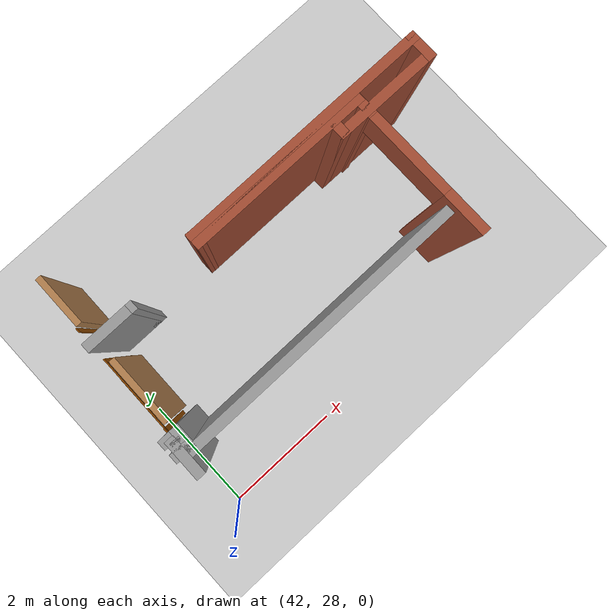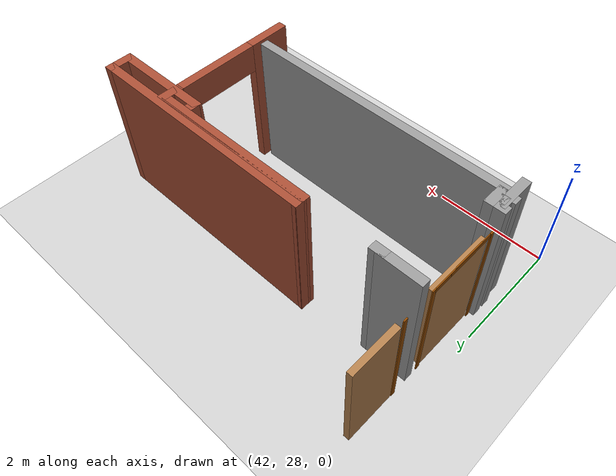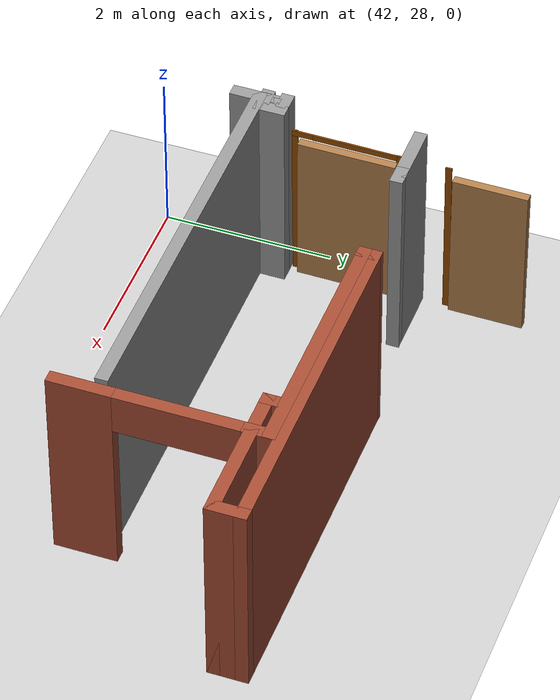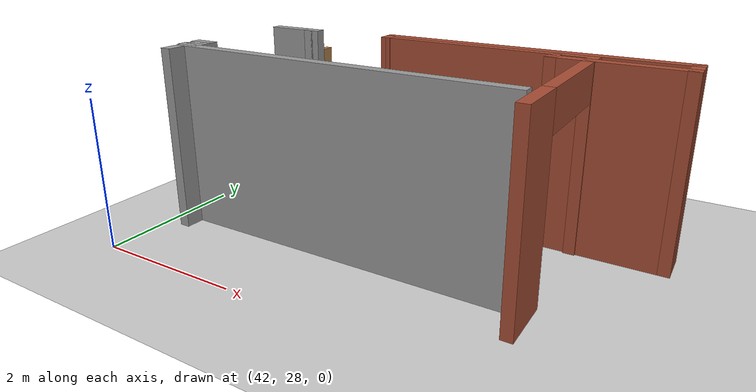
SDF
<sdf version="1.6">
 <world name="default">
  <model name="ground_plane">
   <static>1</static>
   <link name="link">
    <collision name="collision">
     <geometry><plane><normal>0 0 1</normal><size>100 100</size></plane></geometry>
     <surface><friction><ode><mu>100</mu><mu2>50</mu2></ode></friction></surface>
    </collision>
    <visual name="visual">
     <cast_shadows>0</cast_shadows>
     <geometry><plane><normal>0 0 1</normal><size>100 100</size></plane></geometry>
     <material>
      <script><uri>file://media/materials/scripts/gazebo.material</uri><name>Gazebo/Grey</name></script>
     </material>
    </visual>
   </link>
  </model>
  <model name="CVSSP">
   <pose>23.8714 24.094 0 0 -0 0</pose>
   <link name="Wall_137">
    <collision name="Wall_137_Collision">
     <geometry><box><size>0.344547 0.15 2.5</size></box></geometry>
     <pose>0 0 1.25 0 -0 0</pose>
    </collision>
    <visual name="Wall_137_Visual">
     <pose>0 0 1.25 0 -0 0</pose>
     <geometry><box><size>0.344547 0.15 2.5</size></box></geometry>
     <material>
      <script><uri>file://media/materials/scripts/gazebo.material</uri><name>Gazebo/Grey</name></script>
      <ambient>1 1 1 1</ambient>
     </material>
    </visual>
    <pose>18.4776 5.4664 0 0 -0 0</pose>
   </link>
   <link name="Wall_138">
    <collision name="Wall_138_Collision">
     <geometry><box><size>0.37481 0.15 2.5</size></box></geometry>
     <pose>0 0 1.25 0 -0 0</pose>
    </collision>
    <visual name="Wall_138_Visual">
     <pose>0 0 1.25 0 -0 0</pose>
     <geometry><box><size>0.37481 0.15 2.5</size></box></geometry>
     <material>
      <script><uri>file://media/materials/scripts/gazebo.material</uri><name>Gazebo/Grey</name></script>
      <ambient>1 1 1 1</ambient>
     </material>
    </visual>
    <pose>18.5749 5.354 0 0 0 -1.5708</pose>
   </link>
   <link name="Wall_139">
    <collision name="Wall_139_Collision">
     <geometry><box><size>0.344547 0.15 2.5</size></box></geometry>
     <pose>0 0 1.25 0 -0 0</pose>
    </collision>
    <visual name="Wall_139_Visual">
     <pose>0 0 1.25 0 -0 0</pose>
     <geometry><box><size>0.344547 0.15 2.5</size></box></geometry>
     <material>
      <script><uri>file://media/materials/scripts/gazebo.material</uri><name>Gazebo/Grey</name></script>
      <ambient>1 1 1 1</ambient>
     </material>
    </visual>
    <pose>18.4776 5.24159 0 0 -0 3.14159</pose>
   </link>
   <link name="Wall_142">
    <collision name="Wall_142_Collision">
     <geometry><box><size>4.79472 0.15 2.5</size></box></geometry>
     <pose>0 0 1.25 0 -0 0</pose>
    </collision>
    <visual name="Wall_142_Visual">
     <pose>0 0 1.25 0 -0 0</pose>
     <geometry><box><size>4.79472 0.15 2.5</size></box></geometry>
     <material>
      <script><uri>file://media/materials/scripts/gazebo.material</uri><name>Gazebo/Grey</name></script>
      <ambient>1 1 1 1</ambient>
     </material>
    </visual>
    <pose>20.7622 5.16977 0 0 0 -3.14127</pose>
   </link>
   <link name="Wall_200">
    <pose>23.2929 5.89364 0 0 -0 1.57095</pose>
    <visual name="Wall_200_Visual_0">
     <pose>-0.901323 0 1.25 0 -0 0</pose>
     <geometry><box><size>0.73684 0.15 2.5</size></box></geometry>
     <material>
      <script><uri>file://media/materials/scripts/gazebo.material</uri><name>Gazebo/Bricks</name></script>
      <ambient>0.588235 0.588235 0.588235 1</ambient>
     </material>
    </visual>
    <collision name="Wall_200_Collision_0">
     <geometry><box><size>0.73684 0.15 2.5</size></box></geometry>
     <pose>-0.901323 0 1.25 0 -0 0</pose>
    </collision>
    <visual name="Wall_200_Visual_1">
     <pose>1.08077 0 1.25 0 -0 0</pose>
     <geometry><box><size>0.377951 0.15 2.5</size></box></geometry>
     <material>
      <script><uri>file://media/materials/scripts/gazebo.material</uri><name>Gazebo/Bricks</name></script>
      <ambient>0.588235 0.588235 0.588235 1</ambient>
     </material>
    </visual>
    <collision name="Wall_200_Collision_1">
     <geometry><box><size>0.377951 0.15 2.5</size></box></geometry>
     <pose>1.08077 0 1.25 0 -0 0</pose>
    </collision>
    <visual name="Wall_200_Visual_2">
     <pose>0.179445 0 2.25 0 -0 0</pose>
     <geometry><box><size>1.4247 0.15 0.5</size></box></geometry>
     <material>
      <script><uri>file://media/materials/scripts/gazebo.material</uri><name>Gazebo/Bricks</name></script>
      <ambient>0.588235 0.588235 0.588235 1</ambient>
     </material>
    </visual>
    <collision name="Wall_200_Collision_2">
     <geometry><box><size>1.4247 0.15 0.5</size></box></geometry>
     <pose>0.179445 0 2.25 0 -0 0</pose>
    </collision>
   </link>
   <link name="Wall_201">
    <collision name="Wall_201_Collision">
     <geometry><box><size>3.01986 0.15 2.5</size></box></geometry>
     <pose>0 0 1.25 0 -0 0</pose>
    </collision>
    <visual name="Wall_201_Visual">
     <pose>0 0 1.25 0 -0 0</pose>
     <geometry><box><size>3.01986 0.15 2.5</size></box></geometry>
     <material>
      <script><uri>file://media/materials/scripts/gazebo.material</uri><name>Gazebo/Bricks</name></script>
      <ambient>1 1 1 1</ambient>
     </material>
    </visual>
    <pose>21.8512 7.08991 0 0 -0 3.14064</pose>
   </link>
   <link name="Wall_203">
    <collision name="Wall_203_Collision">
     <geometry><box><size>0.268535 0.15 2.5</size></box></geometry>
     <pose>0 0 1.25 0 -0 0</pose>
    </collision>
    <visual name="Wall_203_Visual">
     <pose>0 0 1.25 0 -0 0</pose>
     <geometry><box><size>0.268535 0.15 2.5</size></box></geometry>
     <material>
      <script><uri>file://media/materials/scripts/gazebo.material</uri><name>Gazebo/Bricks</name></script>
      <ambient>1 1 1 1</ambient>
     </material>
    </visual>
    <pose>20.4196 7.15046 0 0 -0 1.5153</pose>
   </link>
   <link name="Wall_204">
    <collision name="Wall_204_Collision">
     <geometry><box><size>4.16742 0.15 2.5</size></box></geometry>
     <pose>0 0 1.25 0 -0 0</pose>
    </collision>
    <visual name="Wall_204_Visual">
     <pose>0 0 1.25 0 -0 0</pose>
     <geometry><box><size>4.16742 0.15 2.5</size></box></geometry>
     <material>
      <script><uri>file://media/materials/scripts/gazebo.material</uri><name>Gazebo/Bricks</name></script>
      <ambient>1 1 1 1</ambient>
     </material>
    </visual>
    <pose>22.425 7.20963 0 0 -0 0</pose>
   </link>
   <link name="Wall_206">
    <collision name="Wall_206_Collision">
     <geometry><box><size>0.472183 0.15 2.5</size></box></geometry>
     <pose>0 0 1.25 0 -0 0</pose>
    </collision>
    <visual name="Wall_206_Visual">
     <pose>0 0 1.25 0 -0 0</pose>
     <geometry><box><size>0.472183 0.15 2.5</size></box></geometry>
     <material>
      <script><uri>file://media/materials/scripts/gazebo.material</uri><name>Gazebo/Bricks</name></script>
      <ambient>1 1 1 1</ambient>
     </material>
    </visual>
    <pose>24.4337 7.04854 0 0 0 -1.5708</pose>
   </link>
   <link name="Wall_207">
    <collision name="Wall_207_Collision">
     <geometry><box><size>1.75 0.15 2.5</size></box></geometry>
     <pose>0 0 1.25 0 -0 0</pose>
    </collision>
    <visual name="Wall_207_Visual">
     <pose>0 0 1.25 0 -0 0</pose>
     <geometry><box><size>1.75 0.15 2.5</size></box></geometry>
     <material>
      <script><uri>file://media/materials/scripts/gazebo.material</uri><name>Gazebo/Bricks</name></script>
      <ambient>1 1 1 1</ambient>
     </material>
    </visual>
    <pose>23.6337 6.88745 0 0 -0 3.14159</pose>
   </link>
   <link name="Wall_208">
    <collision name="Wall_208_Collision">
     <geometry><box><size>0.25 0.15 2.5</size></box></geometry>
     <pose>0 0 1.25 0 -0 0</pose>
    </collision>
    <visual name="Wall_208_Visual">
     <pose>0 0 1.25 0 -0 0</pose>
     <geometry><box><size>0.25 0.15 2.5</size></box></geometry>
     <material>
      <script><uri>file://media/materials/scripts/gazebo.material</uri><name>Gazebo/Bricks</name></script>
      <ambient>1 1 1 1</ambient>
     </material>
    </visual>
    <pose>22.8337 6.93745 0 0 -0 1.5708</pose>
   </link>
   <link name="Wall_222">
    <collision name="Wall_222_Collision">
     <geometry><box><size>0.75 0.15 2.5</size></box></geometry>
     <pose>0 0 1.25 0 -0 0</pose>
    </collision>
    <visual name="Wall_222_Visual">
     <pose>0 0 1.25 0 -0 0</pose>
     <geometry><box><size>0.75 0.15 2.5</size></box></geometry>
     <material>
      <script><uri>file://media/materials/scripts/gazebo.material</uri><name>Gazebo/Grey</name></script>
      <ambient>0.588235 0.588235 0.588235 1</ambient>
     </material>
    </visual>
    <pose>18.778 7.05344 0 0 -0 0</pose>
   </link>
   <link name="Wall_223">
    <collision name="Wall_223_Collision">
     <geometry><box><size>0.25 0.15 2.5</size></box></geometry>
     <pose>0 0 1.25 0 -0 0</pose>
    </collision>
    <visual name="Wall_223_Visual">
     <pose>0 0 1.25 0 -0 0</pose>
     <geometry><box><size>0.25 0.15 2.5</size></box></geometry>
     <material>
      <script><uri>file://media/materials/scripts/gazebo.material</uri><name>Gazebo/Grey</name></script>
      <ambient>1 1 1 1</ambient>
     </material>
    </visual>
    <pose>19.128 7.05344 0 0 -0 0</pose>
   </link>
   <link name="Wall_79">
    <collision name="Wall_79_Collision">
     <geometry><box><size>0.15 0.15 2.5</size></box></geometry>
     <pose>0 0 1.25 0 -0 0</pose>
    </collision>
    <visual name="Wall_79_Visual">
     <pose>0 0 1.25 0 -0 0</pose>
     <geometry><box><size>0.15 0.15 2.5</size></box></geometry>
     <material>
      <script><uri>file://media/materials/scripts/gazebo.material</uri><name>Gazebo/Grey</name></script>
      <ambient>1 1 1 1</ambient>
     </material>
    </visual>
    <pose>18.4772 5.34496 0 0 -0 0</pose>
   </link>
   <link name="Wall_80">
    <collision name="Wall_80_Collision">
     <geometry><box><size>0.15 0.15 2.5</size></box></geometry>
     <pose>0 0 1.25 0 -0 0</pose>
    </collision>
    <visual name="Wall_80_Visual">
     <pose>0 0 1.25 0 -0 0</pose>
     <geometry><box><size>0.15 0.15 2.5</size></box></geometry>
     <material>
      <script><uri>file://media/materials/scripts/gazebo.material</uri><name>Gazebo/Grey</name></script>
      <ambient>1 1 1 1</ambient>
     </material>
    </visual>
    <pose>18.4772 5.34496 0 0 -0 0</pose>
   </link>
   <link name="Wall_83">
    <collision name="Wall_83_Collision">
     <geometry><box><size>0.633672 0.15 2.5</size></box></geometry>
     <pose>0 0 1.25 0 -0 0</pose>
    </collision>
    <visual name="Wall_83_Visual">
     <pose>0 0 1.25 0 -0 0</pose>
     <geometry><box><size>0.633672 0.15 2.5</size></box></geometry>
     <material>
      <script><uri>file://media/materials/scripts/gazebo.material</uri><name>Gazebo/Grey</name></script>
      <ambient>1 1 1 1</ambient>
     </material>
    </visual>
    <pose>18.4338 5.15785 0 0 -0 1.56641</pose>
   </link>
   <static>1</static>
  </model>
  <model name="basic_ply_door_corrected_clone_0_clone_clone_clone">
   <link name="link">
    <pose>-0 0 1.00385 0 -0 0</pose>
    <inertial>
     <mass>0.5167</mass>
     <inertia>
      <ixx>0.00086117</ixx>
      <ixy>0</ixy>
      <ixz>0</ixz>
      <iyy>0.00086117</iyy>
      <iyz>0</iyz>
      <izz>0.00086117</izz>
     </inertia>
    </inertial>
    <gravity>0</gravity>
    <visual name="visual">
     <geometry><box><size>0.88 0.1 1.96</size></box></geometry>
     <material>
      <script><uri>file://media/materials/scripts/gazebo.material</uri><name>Gazebo/Wood</name></script>
      <shader type="pixel"><normal_map>__default__</normal_map></shader>
      <ambient>1 1 1 1</ambient>
      <diffuse>1 1 1 1</diffuse>
      <specular>0.2 0.2 0.2 1</specular>
      <emissive>0 0 0 1</emissive>
     </material>
    </visual>
    <collision name="collision">
     <geometry><box><size>0.88 0.1 1.96</size></box></geometry>
     <surface>
      <friction>
       <ode><mu>1</mu><mu2>1</mu2><fdir1>0 0 0</fdir1><slip1>0</slip1><slip2>0</slip2></ode>
       <torsional>
        <coefficient>1</coefficient>
        <patch_radius>0</patch_radius>
        <surface_radius>0.01</surface_radius>
        <use_patch_radius>0</use_patch_radius>
        <ode><slip>0</slip></ode>
       </torsional>
      </friction>
      <bounce><restitution_coefficient>0</restitution_coefficient><threshold>1e+06</threshold></bounce>
      <contact>
       <collide_without_contact>0</collide_without_contact>
       <collide_without_contact_bitmask>1</collide_without_contact_bitmask>
       <collide_bitmask>1</collide_bitmask>
       <ode>
        <soft_cfm>0</soft_cfm>
        <soft_erp>0.2</soft_erp>
        <kp>100000</kp>
        <kd>100</kd>
        <max_vel>100</max_vel>
        <min_depth>0.001</min_depth>
       </ode>
       <bullet>
        <split_impulse>1</split_impulse>
        <split_impulse_penetration_threshold>-0.01</split_impulse_penetration_threshold>
        <soft_cfm>0</soft_cfm>
        <soft_erp>0.2</soft_erp>
        <kp>100000</kp>
        <kd>100</kd>
       </bullet>
      </contact>
     </surface>
    </collision>
   </link>
   <static>1</static>
   <pose>42.3262 31.993 -0.00101 0 -0 1.56379</pose>
  </model>
  <model name="basic_ply_door_corrected_stairs">
   <link name="link">
    <pose>0 0 1.00385 0 -0 0</pose>
    <inertial>
     <mass>0.5167</mass>
     <inertia>
      <ixx>0.00086117</ixx>
      <ixy>0</ixy>
      <ixz>0</ixz>
      <iyy>0.00086117</iyy>
      <iyz>0</iyz>
      <izz>0.00086117</izz>
     </inertia>
    </inertial>
    <visual name="visual">
     <geometry><box><size>1.15 0.1 1.96</size></box></geometry>
     <material>
      <script><uri>file://media/materials/scripts/gazebo.material</uri><name>Gazebo/Wood</name></script>
      <shader type="pixel"><normal_map>__default__</normal_map></shader>
      <ambient>1 1 1 1</ambient>
      <diffuse>1 1 1 1</diffuse>
      <specular>0.2 0.2 0.2 1</specular>
      <emissive>0 0 0 1</emissive>
     </material>
    </visual>
    <collision name="collision">
     <geometry><box><size>1.15 0.1 1.96</size></box></geometry>
     <surface>
      <friction>
       <ode><mu>1</mu><mu2>1</mu2><fdir1>0 0 0</fdir1><slip1>0</slip1><slip2>0</slip2></ode>
       <torsional>
        <coefficient>1</coefficient>
        <patch_radius>0</patch_radius>
        <surface_radius>0.01</surface_radius>
        <use_patch_radius>0</use_patch_radius>
        <ode><slip>0</slip></ode>
       </torsional>
      </friction>
      <bounce><restitution_coefficient>0</restitution_coefficient><threshold>1e+06</threshold></bounce>
      <contact>
       <collide_without_contact>0</collide_without_contact>
       <collide_without_contact_bitmask>1</collide_without_contact_bitmask>
       <collide_bitmask>1</collide_bitmask>
       <ode>
        <soft_cfm>0</soft_cfm>
        <soft_erp>0.2</soft_erp>
        <kp>100000</kp>
        <kd>100</kd>
        <max_vel>100</max_vel>
        <min_depth>0.001</min_depth>
       </ode>
       <bullet>
        <split_impulse>1</split_impulse>
        <split_impulse_penetration_threshold>-0.01</split_impulse_penetration_threshold>
        <soft_cfm>0</soft_cfm>
        <soft_erp>0.2</soft_erp>
        <kp>100000</kp>
        <kd>100</kd>
       </bullet>
      </contact>
     </surface>
    </collision>
   </link>
   <static>1</static>
   <pose>42.329 30.3124 -0.00101 0 -0 1.56379</pose>
  </model>
  <model name="oak_frame_clone_3_clone_1_clone_1_clone_2">
   <link name="link">
    <inertial>
     <mass>1</mass>
     <inertia>
      <ixx>0.166667</ixx>
      <ixy>0</ixy>
      <ixz>0</ixz>
      <iyy>0.166667</iyy>
      <iyz>0</iyz>
      <izz>0.166667</izz>
     </inertia>
    </inertial>
    <visual name="visual">
     <geometry><box><size>0.018685 0.07556 2.09672</size></box></geometry>
     <material>
      <script><name>Gazebo/Grey</name><uri>file://media/materials/scripts/gazebo.material</uri></script>
      <shader type="pixel"><normal_map>__default__</normal_map></shader>
      <diffuse>0.58 0.29 0 0</diffuse>
      <ambient>0.58 0.29 0 1</ambient>
      <specular>0.01 0.01 0.01 1</specular>
      <emissive>0 0 0 1</emissive>
     </material>
    </visual>
    <collision name="collision">
     <geometry><box><size>0.018685 0.07556 2.09672</size></box></geometry>
     <surface>
      <friction>
       <ode><mu>1</mu><mu2>1</mu2><fdir1>0 0 0</fdir1><slip1>0</slip1><slip2>0</slip2></ode>
       <torsional>
        <coefficient>1</coefficient>
        <patch_radius>0</patch_radius>
        <surface_radius>0</surface_radius>
        <use_patch_radius>1</use_patch_radius>
        <ode><slip>0</slip></ode>
       </torsional>
      </friction>
      <bounce><restitution_coefficient>0</restitution_coefficient><threshold>1e+06</threshold></bounce>
      <contact>
       <collide_without_contact>0</collide_without_contact>
       <collide_without_contact_bitmask>1</collide_without_contact_bitmask>
       <collide_bitmask>1</collide_bitmask>
       <ode>
        <soft_cfm>0</soft_cfm>
        <soft_erp>0.2</soft_erp>
        <kp>1e+13</kp>
        <kd>1</kd>
        <max_vel>0.01</max_vel>
        <min_depth>0</min_depth>
       </ode>
       <bullet>
        <split_impulse>1</split_impulse>
        <split_impulse_penetration_threshold>-0.01</split_impulse_penetration_threshold>
        <soft_cfm>0</soft_cfm>
        <soft_erp>0.2</soft_erp>
        <kp>1e+13</kp>
        <kd>1</kd>
       </bullet>
      </contact>
     </surface>
    </collision>
   </link>
   <static>1</static>
   <pose>42.2782 31.4892 1.03352 -0.008142 0.000764 -3.13056</pose>
  </model>
  <model name="oak_frame_clone_3_clone_1_clone_1_clone_3">
   <link name="link">
    <inertial>
     <mass>1</mass>
     <inertia>
      <ixx>0.166667</ixx>
      <ixy>0</ixy>
      <ixz>0</ixz>
      <iyy>0.166667</iyy>
      <iyz>0</iyz>
      <izz>0.166667</izz>
     </inertia>
    </inertial>
    <visual name="visual">
     <geometry><box><size>0.018685 0.07556 2.09672</size></box></geometry>
     <material>
      <script><name>Gazebo/Grey</name><uri>file://media/materials/scripts/gazebo.material</uri></script>
      <shader type="pixel"><normal_map>__default__</normal_map></shader>
      <diffuse>0.58 0.29 0 0</diffuse>
      <ambient>0.58 0.29 0 1</ambient>
      <specular>0.01 0.01 0.01 1</specular>
      <emissive>0 0 0 1</emissive>
     </material>
    </visual>
    <collision name="collision">
     <geometry><box><size>0.018685 0.07556 2.09672</size></box></geometry>
     <surface>
      <friction>
       <ode><mu>1</mu><mu2>1</mu2><fdir1>0 0 0</fdir1><slip1>0</slip1><slip2>0</slip2></ode>
       <torsional>
        <coefficient>1</coefficient>
        <patch_radius>0</patch_radius>
        <surface_radius>0</surface_radius>
        <use_patch_radius>1</use_patch_radius>
        <ode><slip>0</slip></ode>
       </torsional>
      </friction>
      <bounce><restitution_coefficient>0</restitution_coefficient><threshold>1e+06</threshold></bounce>
      <contact>
       <collide_without_contact>0</collide_without_contact>
       <collide_without_contact_bitmask>1</collide_without_contact_bitmask>
       <collide_bitmask>1</collide_bitmask>
       <ode>
        <soft_cfm>0</soft_cfm>
        <soft_erp>0.2</soft_erp>
        <kp>1e+13</kp>
        <kd>1</kd>
        <max_vel>0.01</max_vel>
        <min_depth>0</min_depth>
       </ode>
       <bullet>
        <split_impulse>1</split_impulse>
        <split_impulse_penetration_threshold>-0.01</split_impulse_penetration_threshold>
        <soft_cfm>0</soft_cfm>
        <soft_erp>0.2</soft_erp>
        <kp>1e+13</kp>
        <kd>1</kd>
       </bullet>
      </contact>
     </surface>
    </collision>
   </link>
   <static>1</static>
   <pose>42.2797 30.9196 1.03352 -0.008142 0.000764 -3.13056</pose>
  </model>
  <model name="oak_frame_clone_3_clone_1_clone_1_clone_4">
   <link name="link">
    <inertial>
     <mass>1</mass>
     <inertia>
      <ixx>0.166667</ixx>
      <ixy>0</ixy>
      <ixz>0</ixz>
      <iyy>0.166667</iyy>
      <iyz>0</iyz>
      <izz>0.166667</izz>
     </inertia>
    </inertial>
    <visual name="visual">
     <geometry><box><size>0.018685 0.07556 2.09672</size></box></geometry>
     <material>
      <script><name>Gazebo/Grey</name><uri>file://media/materials/scripts/gazebo.material</uri></script>
      <shader type="pixel"><normal_map>__default__</normal_map></shader>
      <diffuse>0.58 0.29 0 0</diffuse>
      <ambient>0.58 0.29 0 1</ambient>
      <specular>0.01 0.01 0.01 1</specular>
      <emissive>0 0 0 1</emissive>
     </material>
    </visual>
    <collision name="collision">
     <geometry><box><size>0.018685 0.07556 2.09672</size></box></geometry>
     <surface>
      <friction>
       <ode><mu>1</mu><mu2>1</mu2><fdir1>0 0 0</fdir1><slip1>0</slip1><slip2>0</slip2></ode>
       <torsional>
        <coefficient>1</coefficient>
        <patch_radius>0</patch_radius>
        <surface_radius>0</surface_radius>
        <use_patch_radius>1</use_patch_radius>
        <ode><slip>0</slip></ode>
       </torsional>
      </friction>
      <bounce><restitution_coefficient>0</restitution_coefficient><threshold>1e+06</threshold></bounce>
      <contact>
       <collide_without_contact>0</collide_without_contact>
       <collide_without_contact_bitmask>1</collide_without_contact_bitmask>
       <collide_bitmask>1</collide_bitmask>
       <ode>
        <soft_cfm>0</soft_cfm>
        <soft_erp>0.2</soft_erp>
        <kp>1e+13</kp>
        <kd>1</kd>
        <max_vel>0.01</max_vel>
        <min_depth>0</min_depth>
       </ode>
       <bullet>
        <split_impulse>1</split_impulse>
        <split_impulse_penetration_threshold>-0.01</split_impulse_penetration_threshold>
        <soft_cfm>0</soft_cfm>
        <soft_erp>0.2</soft_erp>
        <kp>1e+13</kp>
        <kd>1</kd>
       </bullet>
      </contact>
     </surface>
    </collision>
   </link>
   <static>1</static>
   <pose>42.2644 29.677 1.03352 -0.008142 0.000764 -3.13056</pose>
  </model>
  <model name="oak_frame_clone_3_clone_0_clone_clone_clone_2">
   <link name="link">
    <inertial>
     <mass>1</mass>
     <inertia>
      <ixx>0.166667</ixx>
      <ixy>0</ixy>
      <ixz>0</ixz>
      <iyy>0.166667</iyy>
      <iyz>0</iyz>
      <izz>0.166667</izz>
     </inertia>
    </inertial>
    <visual name="visual">
     <geometry><box><size>0.018685 0.07556 1.01014</size></box></geometry>
     <material>
      <script><name>Gazebo/Grey</name><uri>file://media/materials/scripts/gazebo.material</uri></script>
      <shader type="pixel"><normal_map>__default__</normal_map></shader>
      <diffuse>0.58 0.29 0 0</diffuse>
      <ambient>0.58 0.29 0 1</ambient>
      <specular>0.01 0.01 0.01 1</specular>
      <emissive>0 0 0 1</emissive>
     </material>
    </visual>
    <collision name="collision">
     <geometry><box><size>0.018685 0.07556 1.01014</size></box></geometry>
     <surface>
      <friction>
       <ode><mu>1</mu><mu2>1</mu2><fdir1>0 0 0</fdir1><slip1>0</slip1><slip2>0</slip2></ode>
       <torsional>
        <coefficient>1</coefficient>
        <patch_radius>0</patch_radius>
        <surface_radius>0</surface_radius>
        <use_patch_radius>1</use_patch_radius>
        <ode><slip>0</slip></ode>
       </torsional>
      </friction>
      <bounce><restitution_coefficient>0</restitution_coefficient><threshold>1e+06</threshold></bounce>
      <contact>
       <collide_without_contact>0</collide_without_contact>
       <collide_without_contact_bitmask>1</collide_without_contact_bitmask>
       <collide_bitmask>1</collide_bitmask>
       <ode>
        <soft_cfm>0</soft_cfm>
        <soft_erp>0.2</soft_erp>
        <kp>1e+13</kp>
        <kd>1</kd>
        <max_vel>0.01</max_vel>
        <min_depth>0</min_depth>
       </ode>
       <bullet>
        <split_impulse>1</split_impulse>
        <split_impulse_penetration_threshold>-0.01</split_impulse_penetration_threshold>
        <soft_cfm>0</soft_cfm>
        <soft_erp>0.2</soft_erp>
        <kp>1e+13</kp>
        <kd>1</kd>
       </bullet>
      </contact>
     </surface>
    </collision>
   </link>
   <static>1</static>
   <pose>42.276 30.3857 2.04113 1.56983 0.062428 -0.004568</pose>
  </model>
  <model name="oak_frame_clone_3_clone_0_clone_clone_clone_3">
   <link name="link">
    <inertial>
     <mass>1</mass>
     <inertia>
      <ixx>0.166667</ixx>
      <ixy>0</ixy>
      <ixz>0</ixz>
      <iyy>0.166667</iyy>
      <iyz>0</iyz>
      <izz>0.166667</izz>
     </inertia>
    </inertial>
    <visual name="visual">
     <geometry><box><size>0.018685 0.07556 1.01014</size></box></geometry>
     <material>
      <script><name>Gazebo/Grey</name><uri>file://media/materials/scripts/gazebo.material</uri></script>
      <shader type="pixel"><normal_map>__default__</normal_map></shader>
      <diffuse>0.58 0.29 0 0</diffuse>
      <ambient>0.58 0.29 0 1</ambient>
      <specular>0.01 0.01 0.01 1</specular>
      <emissive>0 0 0 1</emissive>
     </material>
    </visual>
    <collision name="collision">
     <geometry><box><size>0.018685 0.07556 1.01014</size></box></geometry>
     <surface>
      <friction>
       <ode><mu>1</mu><mu2>1</mu2><fdir1>0 0 0</fdir1><slip1>0</slip1><slip2>0</slip2></ode>
       <torsional>
        <coefficient>1</coefficient>
        <patch_radius>0</patch_radius>
        <surface_radius>0</surface_radius>
        <use_patch_radius>1</use_patch_radius>
        <ode><slip>0</slip></ode>
       </torsional>
      </friction>
      <bounce><restitution_coefficient>0</restitution_coefficient><threshold>1e+06</threshold></bounce>
      <contact>
       <collide_without_contact>0</collide_without_contact>
       <collide_without_contact_bitmask>1</collide_without_contact_bitmask>
       <collide_bitmask>1</collide_bitmask>
       <ode>
        <soft_cfm>0</soft_cfm>
        <soft_erp>0.2</soft_erp>
        <kp>1e+13</kp>
        <kd>1</kd>
        <max_vel>0.01</max_vel>
        <min_depth>0</min_depth>
       </ode>
       <bullet>
        <split_impulse>1</split_impulse>
        <split_impulse_penetration_threshold>-0.01</split_impulse_penetration_threshold>
        <soft_cfm>0</soft_cfm>
        <soft_erp>0.2</soft_erp>
        <kp>1e+13</kp>
        <kd>1</kd>
       </bullet>
      </contact>
     </surface>
    </collision>
   </link>
   <static>1</static>
   <pose>42.2717 30.0651 2.04113 1.56983 0.062428 -0.004568</pose>
  </model>
 </world>
</sdf>
